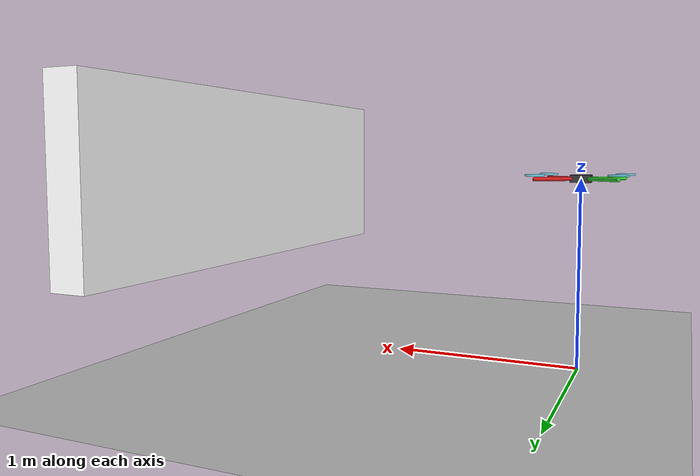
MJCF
<mujoco model="SR-UKF_Quadcopter">
    <compiler angle="degree"/>
    <option timestep="0.001" gravity="0 0 -9.81"/>

    <asset>
        <material name="body_mat" rgba="0.2 0.2 0.2 1"/>
        <material name="arm_front" rgba="0.8 0.1 0.1 1"/> <material name="arm_back"  rgba="0.2 0.8 0.2 1"/> <material name="prop_mat" rgba="0.1 0.8 0.9 0.5"/>

        <texture type="2d" name="target_tex" file="image_1.png"/>
        <material name="target_mat" texture="target_tex" emission="1" specular="0" shininess="0"/>
    </asset>

    <worldbody>
        <light pos="0 0 5" dir="0 0 -1" diffuse="1 1 1"/>
        <geom type="plane" size="5 5 0.1" rgba="0.8 0.8 0.8 1" />

        <geom type="box" pos="2 0 1" size="1.5 0.5 0.1" axisangle="1 1 1 120" material="target_mat" rgba="1 1 1 1"/>

        <body name="quad" pos="0 0 1">
            <freejoint name="root"/>
            <inertial pos="0 0 0" mass="1.0" diaginertia="0.01 0.01 0.02"/>
            <camera name="fpv_cam" pos="0.15 0 0" xyaxes="0 -1 0 0 0 1" fovy="45"/>

            <geom type="box" size="0.05 0.05 0.02" material="body_mat"/>

            <geom type="capsule" fromto="0 0 0  0.2 -0.2 0" size="0.01" material="arm_front"/> <geom type="capsule" fromto="0 0 0 -0.2 -0.2 0" size="0.01" material="arm_back"/>  <geom type="capsule" fromto="0 0 0 -0.2  0.2 0" size="0.01" material="arm_back"/>  <geom type="capsule" fromto="0 0 0  0.2  0.2 0" size="0.01" material="arm_front"/>
            <site name="motor1" pos=" 0.2 -0.2 0.02" type="cylinder" size="0.05 0.005" material="prop_mat"/>
            <site name="motor2" pos="-0.2 -0.2 0.02" type="cylinder" size="0.05 0.005" material="prop_mat"/>
            <site name="motor3" pos="-0.2  0.2 0.02" type="cylinder" size="0.05 0.005" material="prop_mat"/>
            <site name="motor4" pos=" 0.2  0.2 0.02" type="cylinder" size="0.05 0.005" material="prop_mat"/>

            <site name="imu_site" pos="0 0 0" size="0.01" type="sphere" rgba="1 1 0 1"/>
        </body>
    </worldbody>

    <sensor>
        <accelerometer site="imu_site" name="accel"/>
        <gyro site="imu_site" name="gyro"/>

        <framepos name="true_pos" objtype="body" objname="quad"/>
        <framelinvel name="true_linvel" objtype="body" objname="quad"/>
        <framequat name="true_quat" objtype="body" objname="quad"/>
        <frameangvel name="true_angvel" objtype="body" objname="quad"/>
    </sensor>

    <actuator>
        <motor name="thrust1" site="motor1" gear="0 0 1 0 0  -0.02"/>
        <motor name="thrust2" site="motor2" gear="0 0 1 0 0 0.02"/>
        <motor name="thrust3" site="motor3" gear="0 0 1 0 0  -0.02"/>
        <motor name="thrust4" site="motor4" gear="0 0 1 0 0 0.02"/>
    </actuator>
</mujoco>
